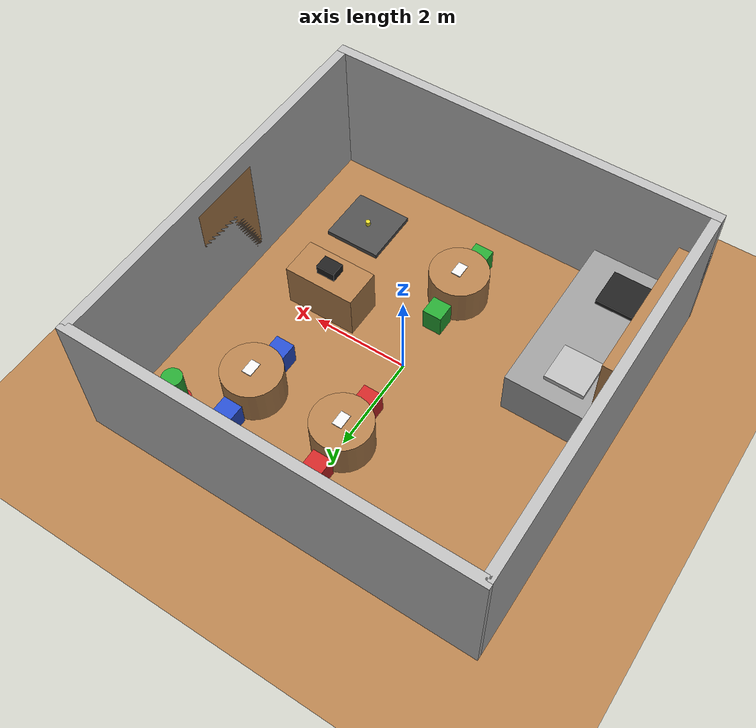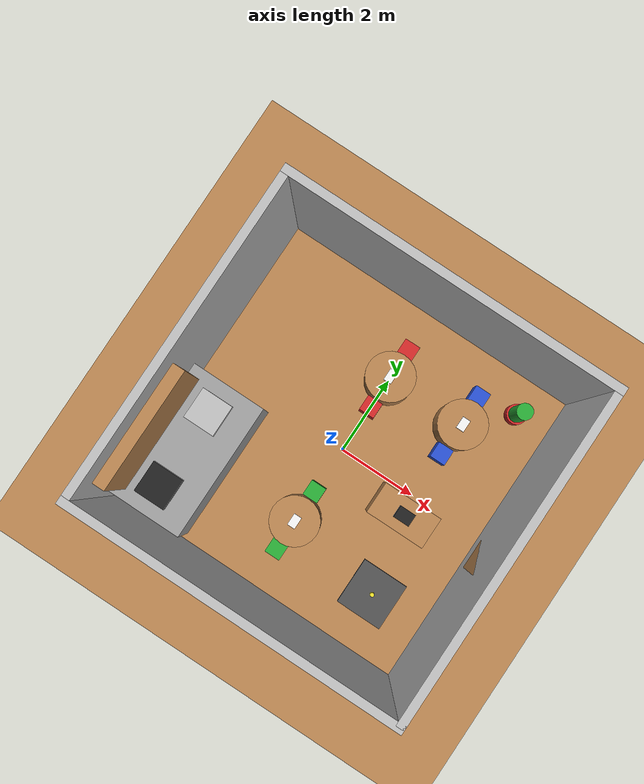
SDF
<?xml version="1.0" ?>
<sdf version="1.5">
  <world name="cafe_world">
    <!-- Set up physics -->
    <physics type="ode">
      <max_step_size>0.001</max_step_size>
      <real_time_factor>1</real_time_factor>
      <real_time_update_rate>1000</real_time_update_rate>
      <gravity>0 0 -9.8</gravity>
    </physics>

    <!-- Add a ground plane -->
    <model name="ground_plane">
      <static>true</static>
      <link name="link">
        <collision name="collision">
          <geometry>
            <plane>
              <normal>0 0 1</normal>
              <size>20 20</size>
            </plane>
          </geometry>
          <surface>
            <friction>
              <ode>
                <mu>100</mu>
                <mu2>50</mu2>
              </ode>
            </friction>
          </surface>
        </collision>
        <visual name="visual">
          <cast_shadows>false</cast_shadows>
          <geometry>
            <plane>
              <normal>0 0 1</normal>
              <size>20 20</size>
            </plane>
          </geometry>
          <material>
            <script>
              <uri>file://media/materials/scripts/gazebo.material</uri>
              <name>Gazebo/WoodFloor</name>
            </script>
          </material>
        </visual>
      </link>
    </model>

    <!-- Ambient light -->
    <light type="directional" name="sun">
      <cast_shadows>true</cast_shadows>
      <pose>0 0 10 0 0 0</pose>
      <diffuse>0.8 0.8 0.8 1</diffuse>
      <specular>0.2 0.2 0.2 1</specular>
      <attenuation>
        <range>1000</range>
        <constant>0.9</constant>
        <linear>0.01</linear>
        <quadratic>0.001</quadratic>
      </attenuation>
      <direction>-0.5 0.1 -0.9</direction>
    </light>

    <!-- Cafe Walls -->
    <!-- Front Wall with Door -->
    <model name="front_wall">
      <static>true</static>
      <pose>4 0 1.5 0 0 0</pose>
      <link name="link">
        <collision name="collision">
          <geometry>
            <box>
              <size>0.2 8 3</size>
            </box>
          </geometry>
        </collision>
        <visual name="visual">
          <geometry>
            <box>
              <size>0.2 8 3</size>
            </box>
          </geometry>
          <material>
            <script>
              <uri>file://media/materials/scripts/gazebo.material</uri>
              <name>Gazebo/Cream</name>
            </script>
          </material>
        </visual>
      </link>
    </model>

    <!-- Door Opening -->
    <model name="door">
      <static>true</static>
      <pose>4 0 1.5 0 0 0</pose>
      <link name="link">
        <collision name="collision">
          <geometry>
            <box>
              <size>0.2 1.5 2.2</size>
            </box>
          </geometry>
        </collision>
        <visual name="visual">
          <geometry>
            <box>
              <size>0.2 1.5 2.2</size>
            </box>
          </geometry>
          <material>
            <script>
              <uri>file://media/materials/scripts/gazebo.material</uri>
              <name>Gazebo/WoodPallet</name>
            </script>
          </material>
        </visual>
      </link>
    </model>

    <!-- Back Wall -->
    <model name="back_wall">
      <static>true</static>
      <pose>-4 0 1.5 0 0 0</pose>
      <link name="link">
        <collision name="collision">
          <geometry>
            <box>
              <size>0.2 8 3</size>
            </box>
          </geometry>
        </collision>
        <visual name="visual">
          <geometry>
            <box>
              <size>0.2 8 3</size>
            </box>
          </geometry>
          <material>
            <script>
              <uri>file://media/materials/scripts/gazebo.material</uri>
              <name>Gazebo/Cream</name>
            </script>
          </material>
        </visual>
      </link>
    </model>

    <!-- Left Wall -->
    <model name="left_wall">
      <static>true</static>
      <pose>0 4 1.5 0 0 0</pose>
      <link name="link">
        <collision name="collision">
          <geometry>
            <box>
              <size>8.2 0.2 3</size>
            </box>
          </geometry>
        </collision>
        <visual name="visual">
          <geometry>
            <box>
              <size>8.2 0.2 3</size>
            </box>
          </geometry>
          <material>
            <script>
              <uri>file://media/materials/scripts/gazebo.material</uri>
              <name>Gazebo/Cream</name>
            </script>
          </material>
        </visual>
      </link>
    </model>

    <!-- Right Wall -->
    <model name="right_wall">
      <static>true</static>
      <pose>0 -4 1.5 0 0 0</pose>
      <link name="link">
        <collision name="collision">
          <geometry>
            <box>
              <size>8.2 0.2 3</size>
            </box>
          </geometry>
        </collision>
        <visual name="visual">
          <geometry>
            <box>
              <size>8.2 0.2 3</size>
            </box>
          </geometry>
          <material>
            <script>
              <uri>file://media/materials/scripts/gazebo.material</uri>
              <name>Gazebo/Cream</name>
            </script>
          </material>
        </visual>
      </link>
    </model>

    <!-- Kitchen Area -->
    <model name="kitchen_counter">
      <static>true</static>
      <pose>-3 -2 0.5 0 0 0</pose>
      <link name="link">
        <collision name="collision">
          <geometry>
            <box>
              <size>2 3.5 1</size>
            </box>
          </geometry>
        </collision>
        <visual name="visual">
          <geometry>
            <box>
              <size>2 3.5 1</size>
            </box>
          </geometry>
          <material>
            <script>
              <uri>file://media/materials/scripts/gazebo.material</uri>
              <name>Gazebo/Grey</name>
            </script>
          </material>
        </visual>
      </link>
    </model>

    <!-- Kitchen Appliance - Stove -->
    <model name="stove">
      <static>true</static>
      <pose>-3 -3 1.05 0 0 0</pose>
      <link name="link">
        <collision name="collision">
          <geometry>
            <box>
              <size>0.8 0.8 0.1</size>
            </box>
          </geometry>
        </collision>
        <visual name="visual">
          <geometry>
            <box>
              <size>0.8 0.8 0.1</size>
            </box>
          </geometry>
          <material>
            <script>
              <uri>file://media/materials/scripts/gazebo.material</uri>
              <name>Gazebo/Black</name>
            </script>
          </material>
        </visual>
      </link>
    </model>

    <!-- Kitchen Appliance - Sink -->
    <model name="sink">
      <static>true</static>
      <pose>-3 -1 1.05 0 0 0</pose>
      <link name="link">
        <collision name="collision">
          <geometry>
            <box>
              <size>0.8 0.8 0.1</size>
            </box>
          </geometry>
        </collision>
        <visual name="visual">
          <geometry>
            <box>
              <size>0.8 0.8 0.1</size>
            </box>
          </geometry>
          <material>
            <script>
              <uri>file://media/materials/scripts/gazebo.material</uri>
              <name>Gazebo/Chrome</name>
            </script>
          </material>
        </visual>
      </link>
    </model>

    <!-- Kitchen Storage -->
    <model name="kitchen_storage">
      <static>true</static>
      <pose>-3.8 -2 1.2 0 0 0</pose>
      <link name="link">
        <collision name="collision">
          <geometry>
            <box>
              <size>0.4 3 2.4</size>
            </box>
          </geometry>
        </collision>
        <visual name="visual">
          <geometry>
            <box>
              <size>0.4 3 2.4</size>
            </box>
          </geometry>
          <material>
            <script>
              <uri>file://media/materials/scripts/gazebo.material</uri>
              <name>Gazebo/Wood</name>
            </script>
          </material>
        </visual>
      </link>
    </model>

    <!-- Table 1 -->
    <model name="table1">
      <static>true</static>
      <pose>0 2 0.4 0 0 0</pose>
      <link name="link">
        <collision name="collision">
          <geometry>
            <cylinder>
              <radius>0.6</radius>
              <length>0.8</length>
            </cylinder>
          </geometry>
        </collision>
        <visual name="visual">
          <geometry>
            <cylinder>
              <radius>0.6</radius>
              <length>0.8</length>
            </cylinder>
          </geometry>
          <material>
            <script>
              <uri>file://media/materials/scripts/gazebo.material</uri>
              <name>Gazebo/WoodPallet</name>
            </script>
          </material>
        </visual>
      </link>
    </model>

    <!-- Chair 1 for Table 1 -->
    <model name="chair1_table1">
      <static>true</static>
      <pose>0 2.8 0.25 0 0 0</pose>
      <link name="link">
        <collision name="collision">
          <geometry>
            <box>
              <size>0.4 0.4 0.5</size>
            </box>
          </geometry>
        </collision>
        <visual name="visual">
          <geometry>
            <box>
              <size>0.4 0.4 0.5</size>
            </box>
          </geometry>
          <material>
            <script>
              <uri>file://media/materials/scripts/gazebo.material</uri>
              <name>Gazebo/Red</name>
            </script>
          </material>
        </visual>
      </link>
    </model>

    <!-- Chair 2 for Table 1 -->
    <model name="chair2_table1">
      <static>true</static>
      <pose>0 1.2 0.25 0 0 0</pose>
      <link name="link">
        <collision name="collision">
          <geometry>
            <box>
              <size>0.4 0.4 0.5</size>
            </box>
          </geometry>
        </collision>
        <visual name="visual">
          <geometry>
            <box>
              <size>0.4 0.4 0.5</size>
            </box>
          </geometry>
          <material>
            <script>
              <uri>file://media/materials/scripts/gazebo.material</uri>
              <name>Gazebo/Red</name>
            </script>
          </material>
        </visual>
      </link>
    </model>

    <!-- Menu on Table 1 -->
    <model name="menu_table1">
      <static>true</static>
      <pose>0 2 0.85 0 0 0</pose>
      <link name="link">
        <collision name="collision">
          <geometry>
            <box>
              <size>0.2 0.3 0.02</size>
            </box>
          </geometry>
        </collision>
        <visual name="visual">
          <geometry>
            <box>
              <size>0.2 0.3 0.02</size>
            </box>
          </geometry>
          <material>
            <script>
              <uri>file://media/materials/scripts/gazebo.material</uri>
              <name>Gazebo/White</name>
            </script>
          </material>
        </visual>
      </link>
    </model>

    <!-- Table 2 -->
    <model name="table2">
      <static>true</static>
      <pose>2 2 0.4 0 0 0</pose>
      <link name="link">
        <collision name="collision">
          <geometry>
            <cylinder>
              <radius>0.6</radius>
              <length>0.8</length>
            </cylinder>
          </geometry>
        </collision>
        <visual name="visual">
          <geometry>
            <cylinder>
              <radius>0.6</radius>
              <length>0.8</length>
            </cylinder>
          </geometry>
          <material>
            <script>
              <uri>file://media/materials/scripts/gazebo.material</uri>
              <name>Gazebo/WoodPallet</name>
            </script>
          </material>
        </visual>
      </link>
    </model>

    <!-- Chair 1 for Table 2 -->
    <model name="chair1_table2">
      <static>true</static>
      <pose>2 2.8 0.25 0 0 0</pose>
      <link name="link">
        <collision name="collision">
          <geometry>
            <box>
              <size>0.4 0.4 0.5</size>
            </box>
          </geometry>
        </collision>
        <visual name="visual">
          <geometry>
            <box>
              <size>0.4 0.4 0.5</size>
            </box>
          </geometry>
          <material>
            <script>
              <uri>file://media/materials/scripts/gazebo.material</uri>
              <name>Gazebo/Blue</name>
            </script>
          </material>
        </visual>
      </link>
    </model>

    <!-- Chair 2 for Table 2 -->
    <model name="chair2_table2">
      <static>true</static>
      <pose>2 1.2 0.25 0 0 0</pose>
      <link name="link">
        <collision name="collision">
          <geometry>
            <box>
              <size>0.4 0.4 0.5</size>
            </box>
          </geometry>
        </collision>
        <visual name="visual">
          <geometry>
            <box>
              <size>0.4 0.4 0.5</size>
            </box>
          </geometry>
          <material>
            <script>
              <uri>file://media/materials/scripts/gazebo.material</uri>
              <name>Gazebo/Blue</name>
            </script>
          </material>
        </visual>
      </link>
    </model>

    <!-- Menu on Table 2 -->
    <model name="menu_table2">
      <static>true</static>
      <pose>2 2 0.85 0 0 0</pose>
      <link name="link">
        <collision name="collision">
          <geometry>
            <box>
              <size>0.2 0.3 0.02</size>
            </box>
          </geometry>
        </collision>
        <visual name="visual">
          <geometry>
            <box>
              <size>0.2 0.3 0.02</size>
            </box>
          </geometry>
          <material>
            <script>
              <uri>file://media/materials/scripts/gazebo.material</uri>
              <name>Gazebo/White</name>
            </script>
          </material>
        </visual>
      </link>
    </model>

    <!-- Table 3 -->
    <model name="table3">
      <static>true</static>
      <pose>0 -2 0.4 0 0 0</pose>
      <link name="link">
        <collision name="collision">
          <geometry>
            <cylinder>
              <radius>0.6</radius>
              <length>0.8</length>
            </cylinder>
          </geometry>
        </collision>
        <visual name="visual">
          <geometry>
            <cylinder>
              <radius>0.6</radius>
              <length>0.8</length>
            </cylinder>
          </geometry>
          <material>
            <script>
              <uri>file://media/materials/scripts/gazebo.material</uri>
              <name>Gazebo/WoodPallet</name>
            </script>
          </material>
        </visual>
      </link>
    </model>

    <!-- Chair 1 for Table 3 -->
    <model name="chair1_table3">
      <static>true</static>
      <pose>0 -2.8 0.25 0 0 0</pose>
      <link name="link">
        <collision name="collision">
          <geometry>
            <box>
              <size>0.4 0.4 0.5</size>
            </box>
          </geometry>
        </collision>
        <visual name="visual">
          <geometry>
            <box>
              <size>0.4 0.4 0.5</size>
            </box>
          </geometry>
          <material>
            <script>
              <uri>file://media/materials/scripts/gazebo.material</uri>
              <name>Gazebo/Green</name>
            </script>
          </material>
        </visual>
      </link>
    </model>

    <!-- Chair 2 for Table 3 -->
    <model name="chair2_table3">
      <static>true</static>
      <pose>0 -1.2 0.25 0 0 0</pose>
      <link name="link">
        <collision name="collision">
          <geometry>
            <box>
              <size>0.4 0.4 0.5</size>
            </box>
          </geometry>
        </collision>
        <visual name="visual">
          <geometry>
            <box>
              <size>0.4 0.4 0.5</size>
            </box>
          </geometry>
          <material>
            <script>
              <uri>file://media/materials/scripts/gazebo.material</uri>
              <name>Gazebo/Green</name>
            </script>
          </material>
        </visual>
      </link>
    </model>

    <!-- Menu on Table 3 -->
    <model name="menu_table3">
      <static>true</static>
      <pose>0 -2 0.85 0 0 0</pose>
      <link name="link">
        <collision name="collision">
          <geometry>
            <box>
              <size>0.2 0.3 0.02</size>
            </box>
          </geometry>
        </collision>
        <visual name="visual">
          <geometry>
            <box>
              <size>0.2 0.3 0.02</size>
            </box>
          </geometry>
          <material>
            <script>
              <uri>file://media/materials/scripts/gazebo.material</uri>
              <name>Gazebo/White</name>
            </script>
          </material>
        </visual>
      </link>
    </model>

    <!-- Robot Docking Station -->
    <model name="robot_dock">
      <static>true</static>
      <pose>2.5 -2.5 0.05 0 0 0</pose>
      <link name="link">
        <collision name="collision">
          <geometry>
            <box>
              <size>1.2 1.2 0.1</size>
            </box>
          </geometry>
        </collision>
        <visual name="visual">
          <geometry>
            <box>
              <size>1.2 1.2 0.1</size>
            </box>
          </geometry>
          <material>
            <script>
              <uri>file://media/materials/scripts/gazebo.material</uri>
              <name>Gazebo/DarkGrey</name>
            </script>
          </material>
        </visual>
      </link>
    </model>

    <!-- Charging Plug for Robot Dock -->
    <model name="charging_plug">
      <static>true</static>
      <pose>2.5 -2.5 0.15 0 0 0</pose>
      <link name="link">
        <collision name="collision">
          <geometry>
            <cylinder>
              <radius>0.05</radius>
              <length>0.1</length>
            </cylinder>
          </geometry>
        </collision>
        <visual name="visual">
          <geometry>
            <cylinder>
              <radius>0.05</radius>
              <length>0.1</length>
            </cylinder>
          </geometry>
          <material>
            <script>
              <uri>file://media/materials/scripts/gazebo.material</uri>
              <name>Gazebo/Yellow</name>
            </script>
          </material>
        </visual>
      </link>
    </model>

    <!-- Cafe Counter -->
    <model name="cafe_counter">
      <static>true</static>
      <pose>2 -0.5 0.5 0 0 0</pose>
      <link name="link">
        <collision name="collision">
          <geometry>
            <box>
              <size>1.5 0.8 1</size>
            </box>
          </geometry>
        </collision>
        <visual name="visual">
          <geometry>
            <box>
              <size>1.5 0.8 1</size>
            </box>
          </geometry>
          <material>
            <script>
              <uri>file://media/materials/scripts/gazebo.material</uri>
              <name>Gazebo/Wood</name>
            </script>
          </material>
        </visual>
      </link>
    </model>

    <!-- Cash Register -->
    <model name="cash_register">
      <static>true</static>
      <pose>2 -0.5 1.05 0 0 0</pose>
      <link name="link">
        <collision name="collision">
          <geometry>
            <box>
              <size>0.4 0.3 0.3</size>
            </box>
          </geometry>
        </collision>
        <visual name="visual">
          <geometry>
            <box>
              <size>0.4 0.3 0.3</size>
            </box>
          </geometry>
          <material>
            <script>
              <uri>file://media/materials/scripts/gazebo.material</uri>
              <name>Gazebo/Black</name>
            </script>
          </material>
        </visual>
      </link>
    </model>

    <!-- Decorative Plant -->
    <model name="plant">
      <static>true</static>
      <pose>3 3 0.5 0 0 0</pose>
      <link name="link">
        <collision name="collision">
          <geometry>
            <cylinder>
              <radius>0.2</radius>
              <length>1</length>
            </cylinder>
          </geometry>
        </collision>
        <visual name="visual">
          <geometry>
            <cylinder>
              <radius>0.2</radius>
              <length>1</length>
            </cylinder>
          </geometry>
          <material>
            <script>
              <uri>file://media/materials/scripts/gazebo.material</uri>
              <name>Gazebo/Green</name>
            </script>
          </material>
        </visual>
      </link>
    </model>

    <!-- Decorative Plant Pot -->
    <model name="plant_pot">
      <static>true</static>
      <pose>3 3 0 0 0 0</pose>
      <link name="link">
        <collision name="collision">
          <geometry>
            <cylinder>
              <radius>0.25</radius>
              <length>0.5</length>
            </cylinder>
          </geometry>
        </collision>
        <visual name="visual">
          <geometry>
            <cylinder>
              <radius>0.25</radius>
              <length>0.5</length>
            </cylinder>
          </geometry>
          <material>
            <script>
              <uri>file://media/materials/scripts/gazebo.material</uri>
              <name>Gazebo/Red</name>
            </script>
          </material>
        </visual>
      </link>
    </model>

    <!-- Additional Ambient Light -->
    <light type="point" name="cafe_light_1">
      <pose>0 0 2.5 0 0 0</pose>
      <diffuse>0.5 0.5 0.5 1</diffuse>
      <specular>0.1 0.1 0.1 1</specular>
      <attenuation>
        <range>20</range>
        <constant>0.5</constant>
        <linear>0.01</linear>
        <quadratic>0.001</quadratic>
      </attenuation>
      <cast_shadows>false</cast_shadows>
    </light>

    <light type="point" name="cafe_light_2">
      <pose>-3 -2 2.5 0 0 0</pose>
      <diffuse>0.5 0.5 0.5 1</diffuse>
      <specular>0.1 0.1 0.1 1</specular>
      <attenuation>
        <range>20</range>
        <constant>0.5</constant>
        <linear>0.01</linear>
        <quadratic>0.001</quadratic>
      </attenuation>
      <cast_shadows>false</cast_shadows>
    </light>

    <light type="point" name="cafe_light_3">
      <pose>2.5 -2.5 2.5 0 0 0</pose>
      <diffuse>0.5 0.5 0.5 1</diffuse>
      <specular>0.1 0.1 0.1 1</specular>
      <attenuation>
        <range>20</range>
        <constant>0.5</constant>
        <linear>0.01</linear>
        <quadratic>0.001</quadratic>
      </attenuation>
      <cast_shadows>false</cast_shadows>
    </light>
  </world>
</sdf>
